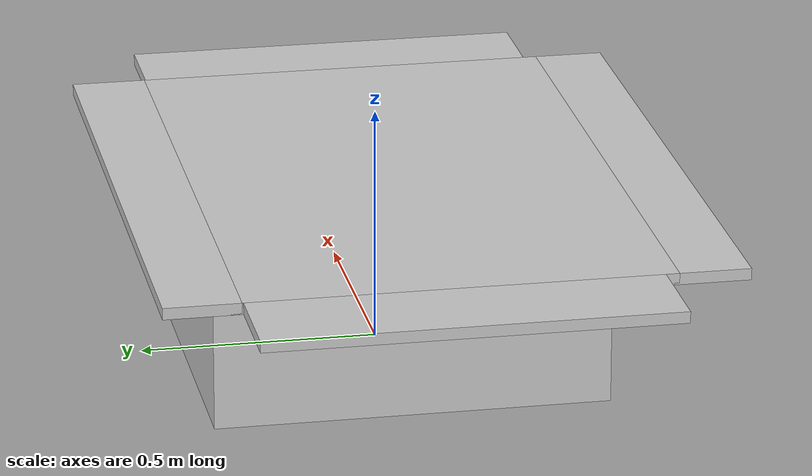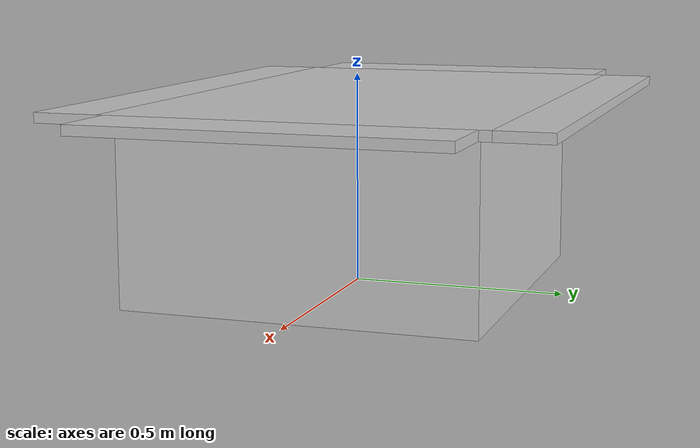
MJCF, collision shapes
<mujoco model="living_room_table">
  <asset>
  <texture file="living_room_table_texture.png" name="tex-living_room_table" type="2d" />
  <material name="living_room_table" reflectance="0.5" texrepeat="1 1" texture="tex-living_room_table" texuniform="false" />
  <mesh file="visual/living_room_table_vis.msh" name="living_room_table_vis" scale="1.5 1.5 1.5" /></asset>
  <worldbody>
    <body>
      <body name="object">
      <geom solimp="0.998 0.998 0.001" solref="0.001 1" density="100" friction="0.95 0.3 0.1" type="mesh" mesh="living_room_table_vis" conaffinity="0" contype="0" group="1" material="living_room_table" /><geom solimp="0.998 0.998 0.001" solref="0.001 1" density="100" friction="0.95 0.3 0.1" type="box" pos="-0.19761 0.00000 0.42492" quat="0.70711 0.00000 0.70711 0.00000" size="0.01184 0.44432 0.67171" group="0" rgba="0.8 0.8 0.8 0.3" /><geom solimp="0.998 0.998 0.001" solref="0.001 1" density="100" friction="0.95 0.3 0.1" type="box" pos="0.54936 -0.00000 0.42492" quat="0.50000 0.50000 0.50000 -0.50000" size="0.01184 0.10133 0.41675" group="0" rgba="0.8 0.8 0.8 0.3" /><geom solimp="0.998 0.998 0.001" solref="0.001 1" density="100" friction="0.95 0.3 0.1" type="box" pos="-0.97006 0.00000 0.42492" quat="0.50000 -0.50000 -0.50000 -0.50000" size="0.01184 0.10133 0.41675" group="0" rgba="0.8 0.8 0.8 0.3" /><geom solimp="0.998 0.998 0.001" solref="0.001 1" density="100" friction="0.95 0.3 0.1" type="box" pos="-0.19761 -0.51121 0.42492" quat="0.70711 0.00000 0.70711 0.00000" size="0.01184 0.07752 0.67171" group="0" rgba="0.8 0.8 0.8 0.3" /><geom solimp="0.998 0.998 0.001" solref="0.001 1" density="100" friction="0.95 0.3 0.1" type="box" pos="-0.19761 0.49665 0.42492" quat="0.70711 0.00000 0.70711 0.00000" size="0.01184 0.07752 0.67171" group="0" rgba="0.8 0.8 0.8 0.3" /><geom solimp="0.998 0.998 0.001" solref="0.001 1" density="100" friction="0.95 0.3 0.1" type="box" pos="-0.00000 0.00000 0.20414" quat="0.70711 -0.00000 -0.70711 -0.00000" size="0.20884 0.41162 0.43516" group="0" rgba="0.8 0.8 0.8 0.3" /></body>
      <site rgba="0 0 0 0" size="0.005" pos="0 0 -0.06" name="bottom_site" />
      <site rgba="0 0 0 0" size="0.005" pos="0 0 0.04" name="top_site" />
      <site rgba="0 0 0 0" size="0.005" pos="0.025 0.025 0" name="horizontal_radius_site" />
    </body>
  </worldbody>
</mujoco>
